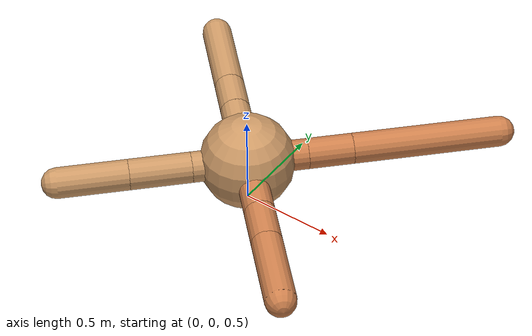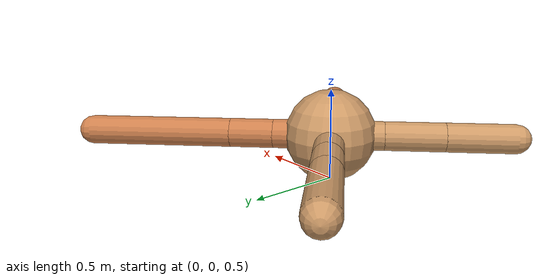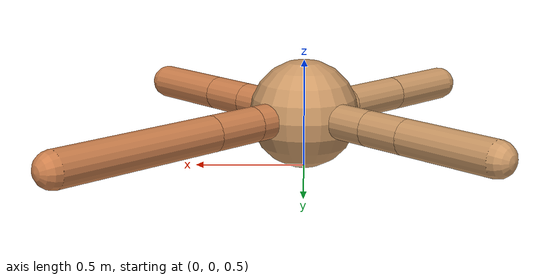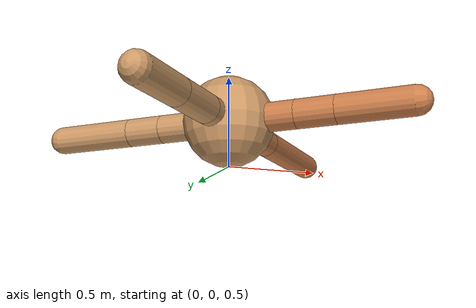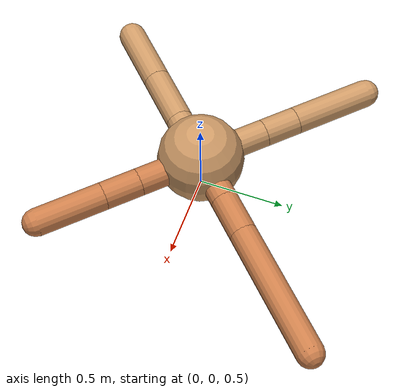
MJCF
<mujoco model="ant">
  <compiler angle="degree" coordinate="local" inertiafromgeom="true" />
  <option integrator="RK4" timestep="0.01" />
  <custom>
    <numeric data="0.0 0.0 0.55 1.0 0.0 0.0 0.0 0.0 1.0 0.0 -1.0 0.0 -1.0 0.0 1.0" name="init_qpos" />
  </custom>
  <default>
    <joint armature="1" damping="1" limited="true" />
    <geom conaffinity="0" condim="3" density="5.0" friction="1.5 0.1 0.1" margin="0.01" rgba="0.8 0.6 0.4 1" />
  </default>
  <worldbody>
    <body name="torso" pos="0 0 0.75">
      <geom name="torso_geom" pos="0 0 0" size="0.25" type="sphere" />

      <body name="front_left_leg" pos="0 0 0">
        <geom fromto="0.0 0.0 0.0 0.22156174142482232 0.22156174142482232 0.0" name="aux_1_geom" size="0.08" type="capsule" rgba=".8 .5 .3 1" />
        <body name="aux_1" pos="0.22156174142482232 0.22156174142482232 0.0">
          <joint axis="0 0 1" name="hip_1" pos="0.0 0.0 0.0" range="-40 40" type="hinge" />
          <geom fromto="0.0 0.0 0.0 0.16782936693829 0.16782936693829 0.0" name="left_leg_geom" size="0.08" type="capsule" rgba=".8 .5 .3 1" />
          <body pos="0.16782936693829 0.16782936693829 0.0" name="front_left_foot">
            <joint axis="-1 1 0" name="ankle_1" pos="0.0 0.0 0.0" range="30 100" type="hinge" />
            <geom fromto="0.0 0.0 0.0 0.5549410960246606 0.5549410960246606 0.0" name="left_ankle_geom" size="0.08" type="capsule" rgba=".8 .5 .3 1" />
          </body>
        </body>
      </body>
      <body name="front_right_leg" pos="0 0 0">
        <geom fromto="0.0 0.0 0.0 -0.284072989562098 0.284072989562098 0.0" name="aux_2_geom" size="0.08" type="capsule" />
        <body name="aux_2" pos="-0.284072989562098 0.284072989562098 0.0">
          <joint axis="0 0 1" name="hip_2" pos="0.0 0.0 0.0" range="-40 40" type="hinge" />
          <geom fromto="0.0 0.0 0.0 -0.14463267006992367 0.14463267006992367 0.0" name="right_leg_geom" size="0.08" type="capsule" />
          <body pos="-0.14463267006992367 0.14463267006992367 0.0" name="front_right_foot">
            <joint axis="1 1 0" name="ankle_2" pos="0.0 0.0 0.0" range="-100 -30" type="hinge" />
            <geom fromto="0.0 0.0 0.0 -0.3284142770201234 0.3284142770201234 0.0" name="right_ankle_geom" size="0.08" type="capsule" />
          </body>
        </body>
      </body>
      <body name="left_back_leg" pos="0 0 0">
        <geom fromto="0.0 0.0 0.0 -0.20536497608409554 -0.20536497608409554 0.0" name="aux_3_geom" size="0.08" type="capsule" />
        <body name="aux_3" pos="-0.20536497608409554 -0.20536497608409554 0.0">
          <joint axis="0 0 1" name="hip_3" pos="0.0 0.0 0.0" range="-40 40" type="hinge" />
          <geom fromto="0.0 0.0 0.0 -0.22889222520199246 -0.22889222520199246 0.0" name="back_leg_geom" size="0.08" type="capsule" />
          <body pos="-0.22889222520199246 -0.22889222520199246 0.0" name="left_back_foot">
            <joint axis="-1 1 0" name="ankle_3" pos="0.0 0.0 0.0" range="-100 -30" type="hinge" />
            <geom fromto="0.0 0.0 0.0 -0.2605246943002146 -0.2605246943002146 0.0" name="third_ankle_geom" size="0.08" type="capsule" />
          </body>
        </body>
      </body>
      <body name="right_back_leg" pos="0 0 0">
        <geom fromto="0.0 0.0 0.0 0.2724526920801908 -0.2724526920801908 0.0" name="aux_4_geom" size="0.08" type="capsule" rgba=".8 .5 .3 1" />
        <body name="aux_4" pos="0.2724526920801908 -0.2724526920801908 0.0">
          <joint axis="0 0 1" name="hip_4" pos="0.0 0.0 0.0" range="-40 40" type="hinge" />
          <geom fromto="0.0 0.0 0.0 0.1530713969154232 -0.1530713969154232 0.0" name="rightback_leg_geom" size="0.08" type="capsule" rgba=".8 .5 .3 1" />
          <body pos="0.1530713969154232 -0.1530713969154232 0.0" name="right_back_foot">
            <joint axis="1 1 0" name="ankle_4" pos="0.0 0.0 0.0" range="30 100" type="hinge" />
            <geom fromto="0.0 0.0 0.0 0.28366527923531815 -0.28366527923531815 0.0" name="fourth_ankle_geom" size="0.08" type="capsule" rgba=".8 .5 .3 1" />
          </body>
        </body>
      </body>
    </body>
  </worldbody>
  <actuator>
    <motor ctrllimited="true" ctrlrange="-1.0 1.0" joint="hip_4" gear="150" />
    <motor ctrllimited="true" ctrlrange="-1.0 1.0" joint="ankle_4" gear="150" />
    <motor ctrllimited="true" ctrlrange="-1.0 1.0" joint="hip_1" gear="150" />
    <motor ctrllimited="true" ctrlrange="-1.0 1.0" joint="ankle_1" gear="150" />
    <motor ctrllimited="true" ctrlrange="-1.0 1.0" joint="hip_2" gear="150" />
    <motor ctrllimited="true" ctrlrange="-1.0 1.0" joint="ankle_2" gear="150" />
    <motor ctrllimited="true" ctrlrange="-1.0 1.0" joint="hip_3" gear="150" />
    <motor ctrllimited="true" ctrlrange="-1.0 1.0" joint="ankle_3" gear="150" />
  </actuator>
</mujoco>
